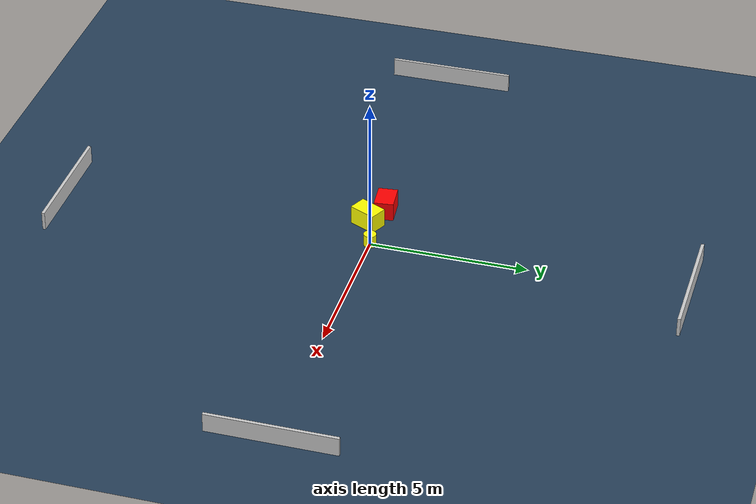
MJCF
<?xml version="1.0" ?>
<mujoco model="generated_environment">
  <option timestep="0.01" integrator="RK4" cone="elliptic"/>
  <default>
    <geom density="1"/>
  </default>
  <asset>
    <texture builtin="gradient" height="3072" name="skybox" rgb1="0.3 0.5 0.7" rgb2="0 0 0" type="skybox" width="512"/>
    <texture builtin="checker" height="300" name="groundplane" rgb1="0.2 0.3 0.4" rgb2="0.1 0.2 0.3" type="2d" width="300"/>
    <material name="groundplane" reflectance="0.2" texrepeat="5 5" texture="groundplane"/>
  </asset>
  <worldbody>
    <light dir="0 0 -1" directional="true" pos="0 0 1.5"/>
    <geom condim="3" friction="0.5 0.005 0.001" material="groundplane" name="floor" pos="0 0 0" size="0 0 0.05" type="plane"/>
    <body name="walls">
      <geom name="wall_1" condim="4" pos="-10.0 0.0 0.3" rgba="0.800000011920929 0.800000011920929 0.800000011920929 1.0" size="0.05 2.0 0.3" type="box"/>
      <geom name="wall_2" condim="4" pos="10.0 0.0 0.3" rgba="0.800000011920929 0.800000011920929 0.800000011920929 1.0" size="0.05 2.0 0.3" type="box"/>
      <geom name="wall_3" condim="4" pos="0.0 -10.0 0.3" rgba="0.800000011920929 0.800000011920929 0.800000011920929 1.0" size="2.0 0.05 0.3" type="box"/>
      <geom name="wall_4" condim="4" pos="0.0 10.0 0.3" rgba="0.800000011920929 0.800000011920929 0.800000011920929 1.0" size="2.0 0.05 0.3" type="box"/>
    </body>
    <body name="robot">
      <joint name="joint_x" type="slide" pos="0 0 0" axis="1 0 0"/>
      <joint name="joint_y" type="slide" pos="0 0 0" axis="0 1 0"/>
      <geom name="robot" type="cylinder" pos="0.0 0.0 0.2" size="0.2 0.2 0.0" mass="5.0" friction="1.0 0.005 0.0001" condim="4" rgba="1.0 1.0 0.0 1.0"/>
    </body>
    <body name="obstacle_1_movable">
      <geom name="obstacle_1_movable" condim="4" pos="-1.0617002326099398 -0.37757375834011847 0.3" euler="0 0 334.36847553322184" friction="0.0 0.005 0.001" rgba="1.0 1.0 0.0 1.0" size="0.29001558159483715 0.4476227027322951 0.3" type="box" mass="0.1"/>
      <joint type="free"/>
    </body>
    <body name="obstacle_2_static">
      <geom name="obstacle_2_static" condim="4" pos="-1.8428405677517286 -0.010561079590937926 0.3" euler="0 0 275.7290067741345" friction="0.0 0.005 0.001" rgba="1.0 0.0 0.0 1.0" size="0.3084021055015297 0.42742555079923694 0.3" type="box"/>
    </body>
  </worldbody>
  <actuator>
    <motor name="actuator_x" joint="joint_x" gear="1" ctrlrange="-1 1"/>
    <motor name="actuator_y" joint="joint_y" gear="1" ctrlrange="-1 1"/>
  </actuator>
</mujoco>
